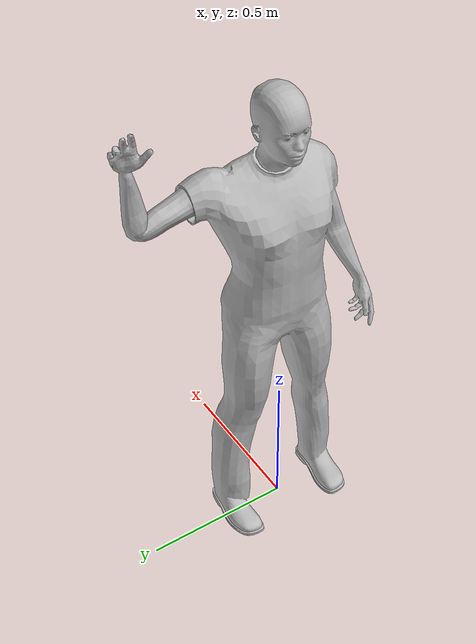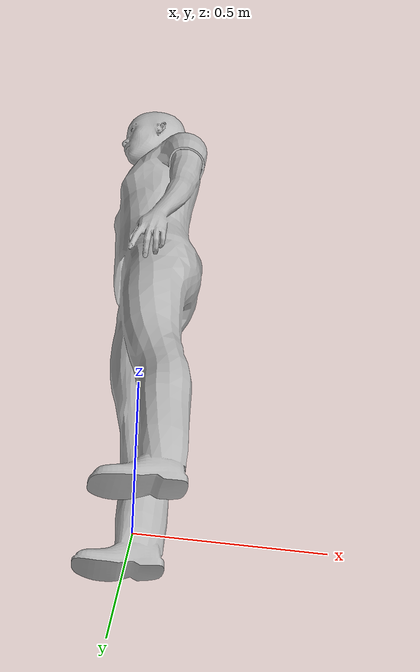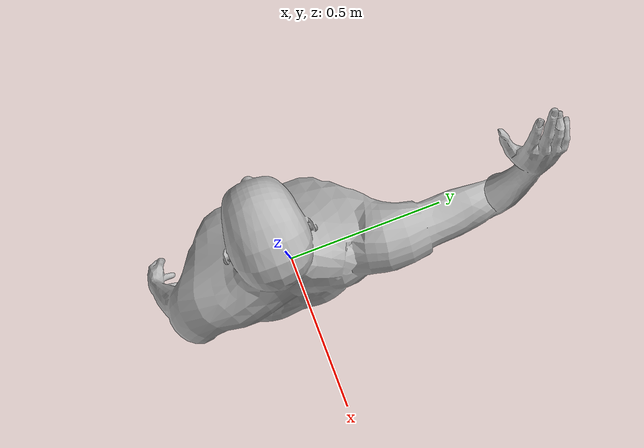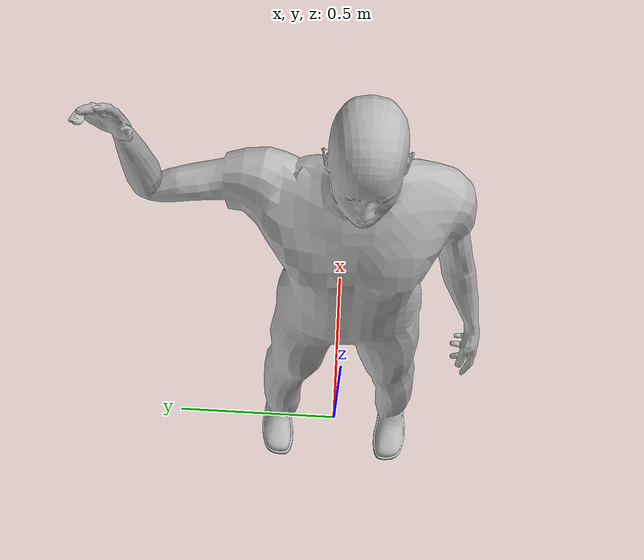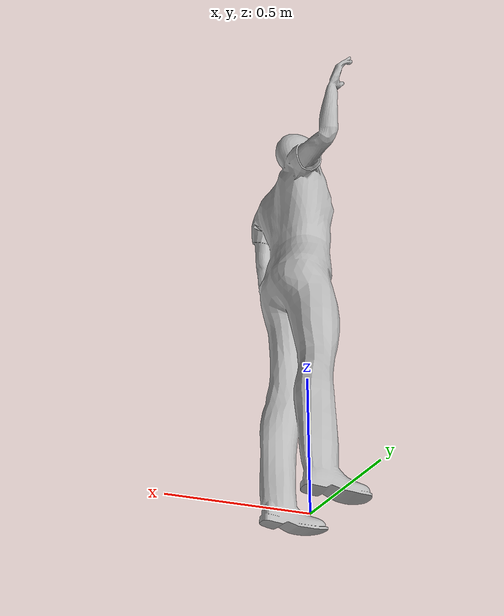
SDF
<?xml version="1.0" ?>
<sdf version="1.6">
<model name="clf_actor_waving">
  <static>true</static>
  <link name="link">
    <collision name="collision">
      <geometry>
        <mesh>
          <uri>model://clf_actor_waving/meshes/clf_actor_waving.dae</uri>
        </mesh>
      </geometry>
    </collision>
    <visual name="visual">
      <geometry>
        <mesh>
          <uri>model://clf_actor_waving/meshes/clf_actor_waving.dae</uri>
        </mesh>
      </geometry>
    </visual>
  </link>
</model>
</sdf>
